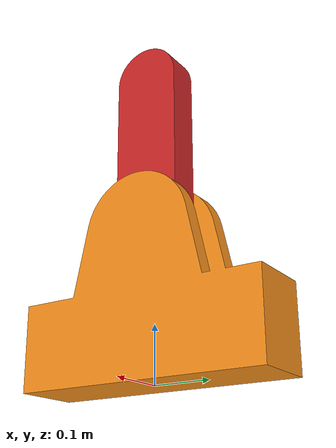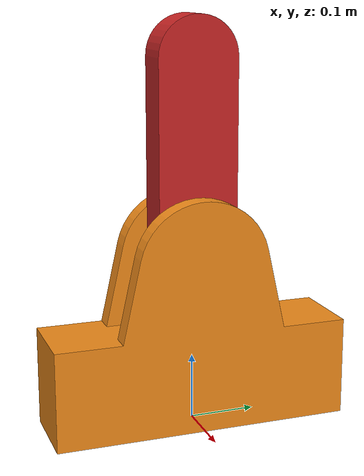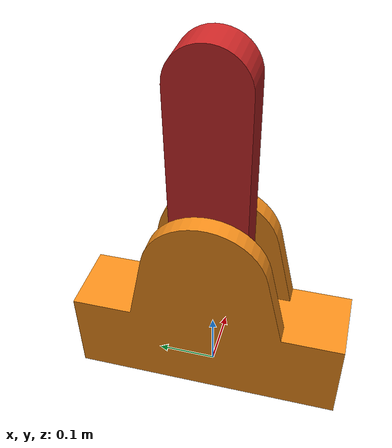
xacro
<?xml version="1.0" encoding="UTF-8"?>
<!-- A single joint (one movable link) robot -->
<robot name="sl_robot" xmlns:xacro="http://www.ros.org/wiki/xacro">
    <!-- Include other files -->
    <!-- Macro files -->
    <xacro:include filename="$(find basic_robotics)/urdf/slbot_t5_macros.xacro" />
    <!-- Include the gazebo tags -->
    <xacro:include filename="$(find basic_robotics)/urdf/slbot_t5.gazebo" />
    <!-- Dummy link -->
    <link name="world">
    </link>
    <!-- Base link -->
    <xacro:stl_link lname="base" mass="82.74614">
        <!-- Origin for link -->
        <origin xyz="-0.06 -0.225 0.0" rpy="0.0 0.0 0.0" />
        <!-- Mesh for link -->
        <mesh filename="package://basic_robotics/urdf/meshes/Base_t5.STL" scale="0.001 0.001 0.001" />
        <!-- Inertia tag -->
        <inertia ixx="2.746313" ixy="0.0" ixz="0.0"
                        iyy="1.721184" iyz="0.0"
                                izz="1.254731" />
    </xacro:stl_link>
    <!-- Link1 link -->
    <xacro:stl_link lname="link1" mass="7.61817">
        <!-- Origin for link -->
        <origin xyz="-0.03 -0.06 -0.06" rpy="0.0 0.0 0.0" />
        <!-- Mesh for link -->
        <mesh filename="package://basic_robotics/urdf/meshes/Link_t5.STL" scale="0.001 0.001 0.001" />
        <!-- Inertia tag -->
        <inertia ixx="0.292031" ixy="0.0" ixz="0.0"
                        iyy="0.285400" iyz="0.0"
                                izz="0.011201" />
    </xacro:stl_link>
    <!-- Joint for the dummy link -->
    <joint name="dummy" type="fixed">
        <parent link="world" />
        <child link="base" />
    </joint>
    <!-- Joint to connect links -->
    <joint name="joint1" type="revolute">
        <parent link="base"/>
        <child link="link1"/>
        <origin xyz="0.0 0.0 0.25" rpy="0.0 0.0 0.0"/>
        <axis xyz="1.0 0.0 0.0"/>
        <limit lower="-1.570796" upper="1.570796" velocity="10" effort="10" />
    </joint>
</robot>

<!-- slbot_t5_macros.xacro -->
<!-- This file contains macros for the single link robot -->
<robot name="sl_robot" xmlns:xacro="http://www.ros.org/wiki/xacro">
    <!-- Add a link -->
    <xacro:macro name="stl_link" params="lname mass *origin *mesh *inertia">
        <link name="${lname}">
            <!-- Visual: appearance -->
            <visual>
                <!-- Origin of the visual mesh -->
                <xacro:insert_block name="origin" />
                <geometry>
                    <!-- Mesh file -->
                    <xacro:insert_block name="mesh" />
                </geometry>
            </visual>
            <!-- Collision: physics -->
            <collision>
                <!-- Origin of the visual mesh -->
                <xacro:insert_block name="origin" />
                <geometry>
                    <!-- Mesh file -->
                    <xacro:insert_block name="mesh" />
                </geometry>
            </collision>
            <!-- Inertia: 3D moment of inertia -->
            <inertial>
                <origin xyz="0.0 0.0 0.0" rpy="0.0 0.0 0.0" />
                <mass value="${mass}" />
                <!-- Inertial tensor -->
                <xacro:insert_block name="inertia" />
            </inertial>
        </link>
    </xacro:macro>
</robot>
